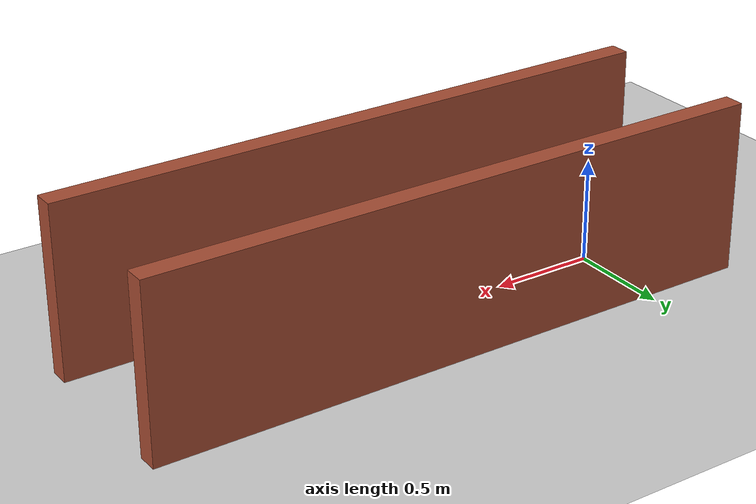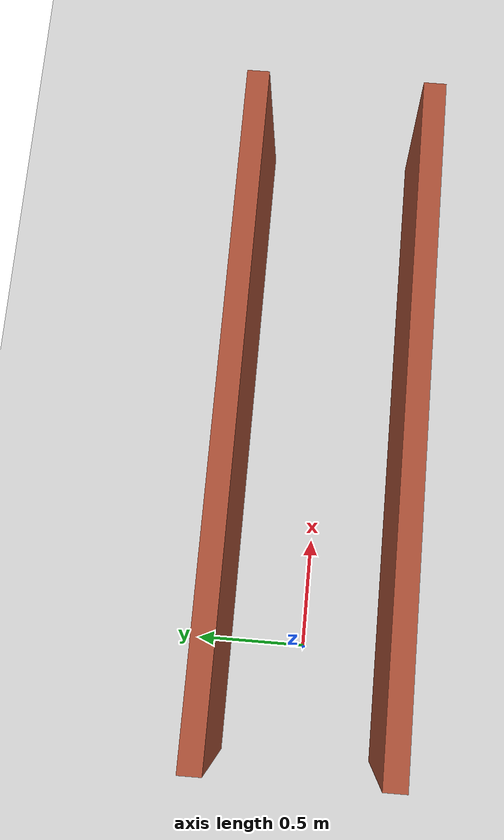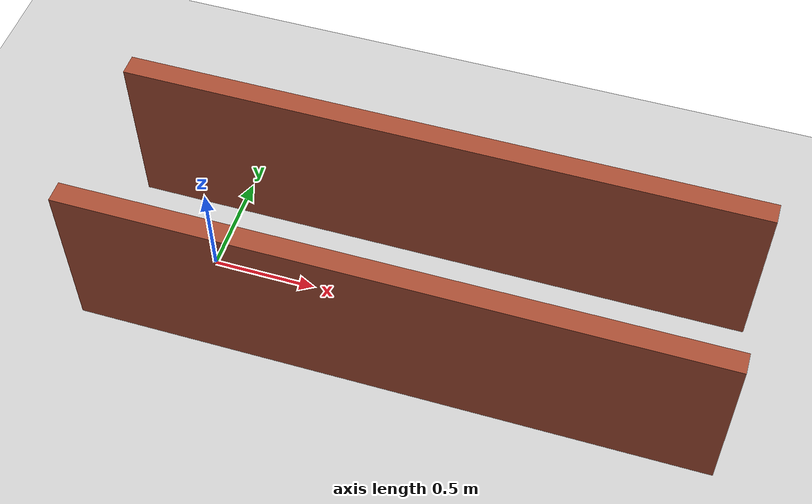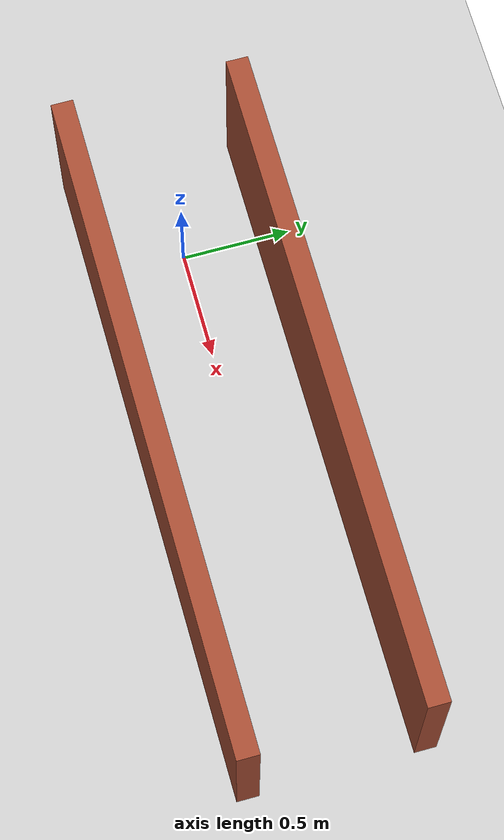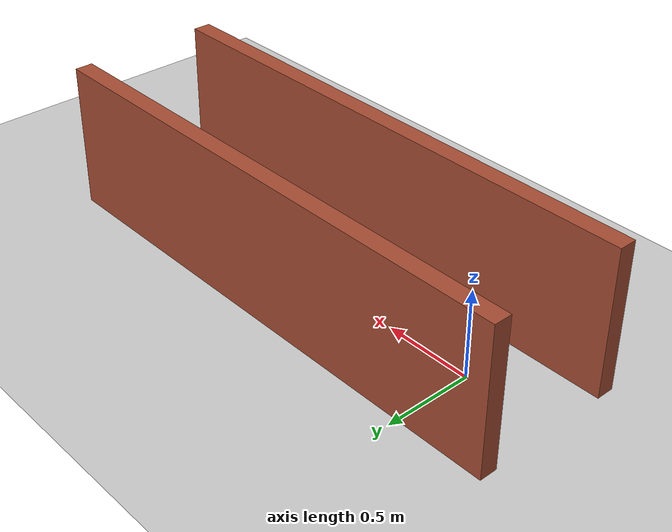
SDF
<sdf version="1.4">
 <world name="default">
  <light name="sun" type="directional">
   <pose>0 0 10 0 -0 0</pose>
   <diffuse>0.8 0.8 0.8 1</diffuse>
   <specular>0.2 0.2 0.2 1</specular>
   <attenuation>
    <range>1000</range>
    <constant>0.9</constant>
    <linear>0.01</linear>
    <quadratic>0.001</quadratic>
   </attenuation>
   <direction>-0.5 0.0 -0.9</direction>
  </light>
  <model name="ground_plane">
   <static>1</static>
   <link name="link">
    <collision name="collision">
     <geometry><plane><normal>0 0 1</normal><size>100 100</size></plane></geometry>
     <surface>
      <friction><ode><mu>1.0</mu><mu2>1.0</mu2></ode></friction>
      <contact>
       <ode>
        <kp>1e5</kp>
        <kd>10.0</kd>
        <soft_cfm>0.0</soft_cfm>
        <soft_erp>0.2</soft_erp>
        <maxVel>0.0001</maxVel>
        <minDepth>0.001</minDepth>
       </ode>
      </contact>
     </surface>
    </collision>
    <visual name="visual">
     <cast_shadows>0</cast_shadows>
     <geometry><plane><normal>0 0 1</normal><size>1000 1000</size></plane></geometry>
     <material>
      <script><uri>file://media/materials/scripts/gazebo.material</uri><name>Gazebo/Grey</name></script>
     </material>
    </visual>
    <velocity_decay><linear>0</linear><angular>0</angular></velocity_decay>
   </link>
  </model>
  <model name="left_wall">
   <pose>1.0 0.395 0 0 -0 0</pose>
   <link name="Wall_1">
    <collision name="Wall_1_Collision">
     <geometry><box><size>3.0 0.10 0.9</size></box></geometry>
     <pose>0 0 0.370 0 -0 0</pose>
     <surface>
      <friction><ode><mu>1.0</mu><mu2>1.0</mu2></ode></friction>
      <contact>
       <ode>
        <kp>1e5</kp>
        <kd>10.0</kd>
        <soft_cfm>0.0</soft_cfm>
        <soft_erp>0.2</soft_erp>
        <maxVel>0.0001</maxVel>
        <minDepth>0.001</minDepth>
       </ode>
      </contact>
     </surface>
    </collision>
    <visual name="Wall_1_Visual">
     <pose>0 0 0.370 0 -0 0</pose>
     <geometry><box><size>3.0 0.10 0.9</size></box></geometry>
     <material>
      <script><uri>file://media/materials/scripts/gazebo.material</uri><name>Gazebo/Bricks</name></script>
     </material>
    </visual>
   </link>
   <static>1</static>
  </model>
  <model name="right_wall">
   <pose>1.0 -0.395 0 0 -0 0</pose>
   <link name="Wall_1">
    <collision name="Wall_1_Collision">
     <geometry><box><size>3.0 0.10 0.9</size></box></geometry>
     <pose>0 0 0.370 0 -0 0</pose>
     <surface>
      <friction><ode><mu>1.0</mu><mu2>1.0</mu2></ode></friction>
      <contact>
       <ode>
        <kp>1e5</kp>
        <kd>10.0</kd>
        <soft_cfm>0.0</soft_cfm>
        <soft_erp>0.2</soft_erp>
        <maxVel>0.0001</maxVel>
        <minDepth>0.001</minDepth>
       </ode>
      </contact>
     </surface>
    </collision>
    <visual name="Wall_1_Visual">
     <pose>0 0 0.370 0 -0 0</pose>
     <geometry><box><size>3.0 0.10 0.9</size></box></geometry>
     <material>
      <script><uri>file://media/materials/scripts/gazebo.material</uri><name>Gazebo/Bricks</name></script>
     </material>
    </visual>
   </link>
   <static>1</static>
  </model>
  <physics type="ode">
   <simbody>
    <accuracy>0.005</accuracy>
    <max_transient_velocity>0.005</max_transient_velocity>
    <contact><stiffness>1e8</stiffness><dissipation>20.0</dissipation></contact>
   </simbody>
   <ode>
    <solver>
     <type>quick</type>
     <iters>400</iters>
     <sor>1.25</sor>
     <friction_model>cone_model</friction_model>
    </solver>
    <constraints>
     <cfm>0.0</cfm>
     <erp>0.2</erp>
     <contact_max_correcting_vel>0.01</contact_max_correcting_vel>
     <contact_surface_layer>0.0001</contact_surface_layer>
    </constraints>
   </ode>
   <max_step_size>0.001</max_step_size>
   <real_time_factor>1</real_time_factor>
   <real_time_update_rate>1000</real_time_update_rate>
   <gravity>0 0 -9.8</gravity>
  </physics>
  <scene><ambient>0.4 0.4 0.4 1</ambient><background>0.7 0.7 0.7 1</background><shadows>1</shadows></scene>
  <spherical_coordinates>
   <surface_model>EARTH_WGS84</surface_model>
   <latitude_deg>0</latitude_deg>
   <longitude_deg>0</longitude_deg>
   <elevation>0</elevation>
   <heading_deg>0</heading_deg>
  </spherical_coordinates>
 </world>
</sdf>
